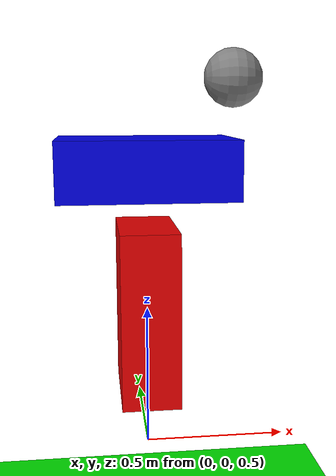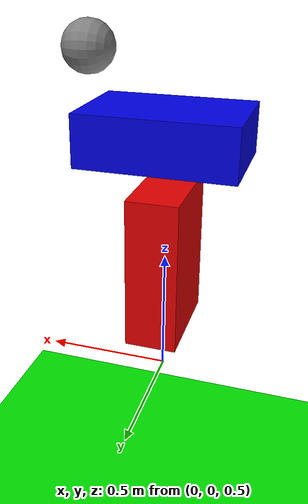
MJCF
<mujoco>
    <compiler angle="radian" />

    <visual>
        <headlight ambient="0.5 0.5 0.5" />
    </visual>

    <asset>
        <material name="white" rgba="1 1 1 1" />
    </asset>

    <worldbody>
        <light diffuse=".5 .5 .5" pos="0 0 3" dir="0 0 -1"/>
        <geom type="plane" size="1 1 0.1" rgba="0 .9 0 1"/>
        <body pos="0 0 1" euler="0 0 0">
            <joint type="free"/>
            <inertial pos="0 0 0" mass="1" diaginertia="0.01 0.01 0.01"/>
            <geom type="box" size=".1 .2 .3" rgba=".9 0 0 1"/>
            <!-- Comment -->
            <!--geom type="box" size=".1 .2 .3" material="white"/-->
        </body>

        <body pos="0 0 1.5" euler="0 1.57 0">
            <joint type="free"/>
            <inertial pos="0 0 0" mass="1" diaginertia="0.01 0.01 0.01"/>
            <geom type="box" size=".1 .2 .3" rgba="0 0 .9 1"/>
        </body>

        <body pos="0.3 0 1.8" euler="0 1.57 0">
            <joint type="free"/>
            <inertial pos="0 0 0" mass="1" diaginertia="0.01 0.01 0.01"/>
            <geom type="sphere" size=".1" rgba=".5 .5 .5 1"/>
        </body>
    </worldbody>
</mujoco>
